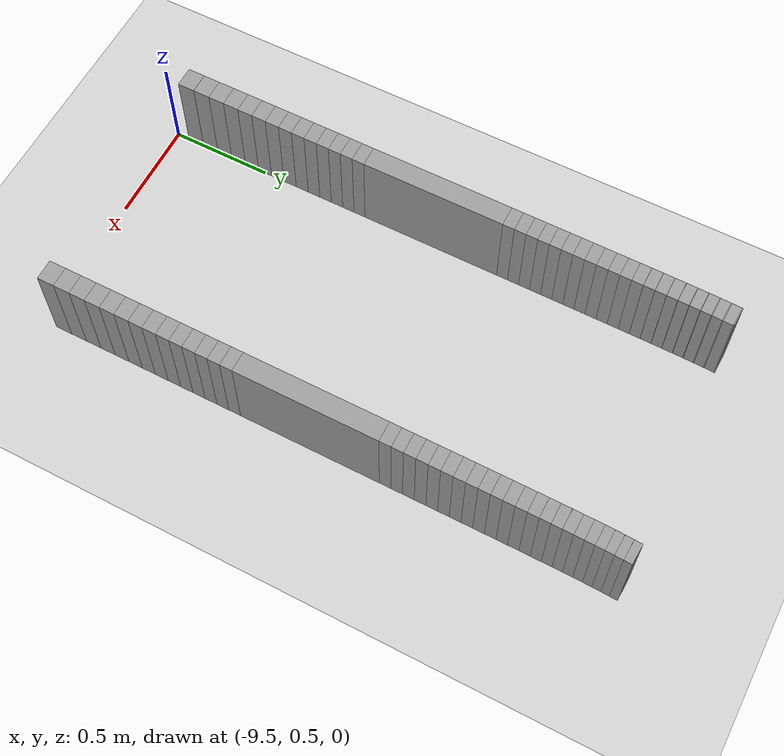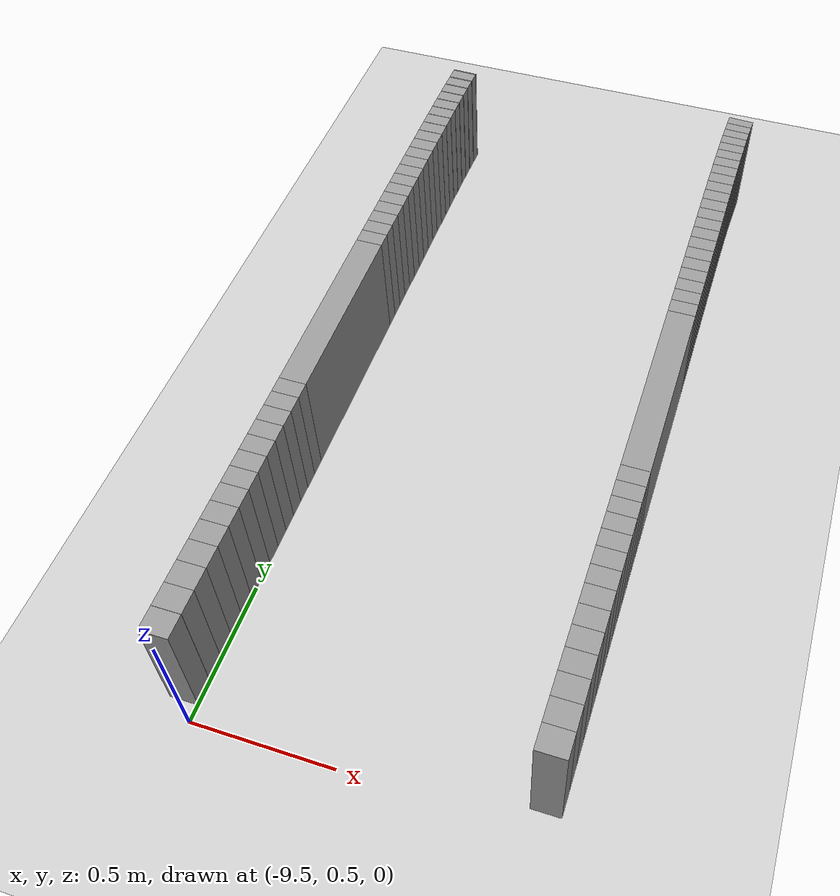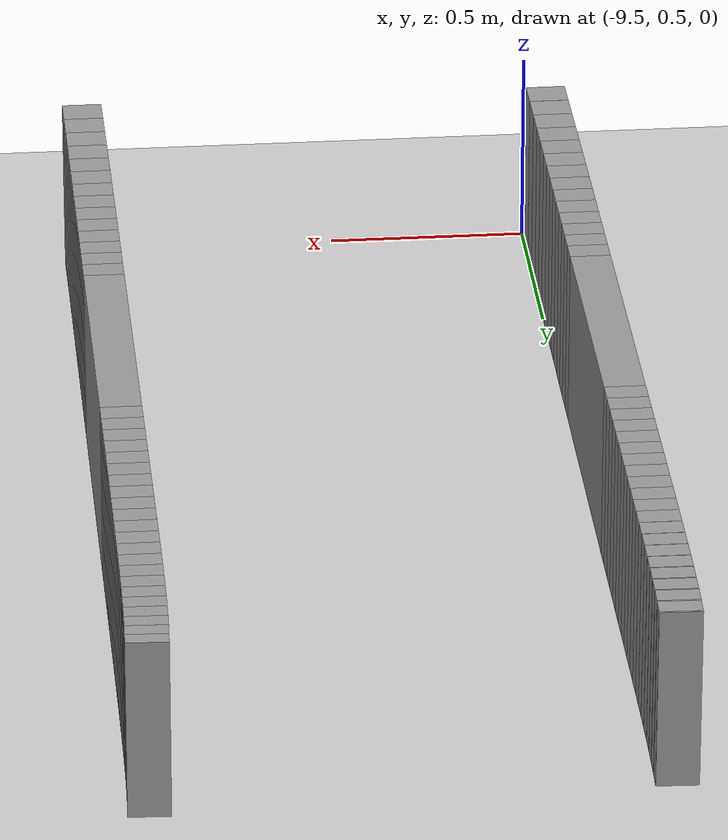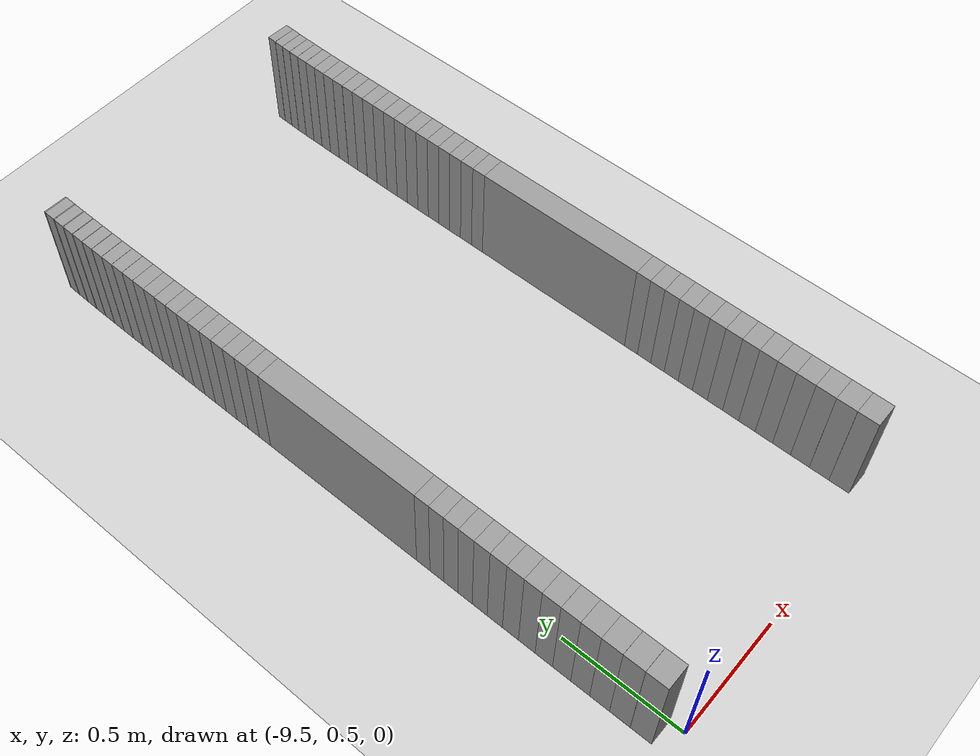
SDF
<sdf version="1.6">
 <world name="default">
  <include><uri>model://ground_plane</uri></include>
  <include><uri>model://sun</uri></include>
  <model name="wall_328_outward">
   <static>true</static>
   <link name="link">
    <collision name="collision">
     <geometry><box><size>0.03900193815023389 0.1 0.45</size></box></geometry>
    </collision>
    <visual name="visual">
     <geometry><box><size>0.03900193815023389 0.1 0.45</size></box></geometry>
     <material>
      <script><uri>file://media/materials/scripts/gazebo.material</uri><name>Gazebo/Gray</name></script>
     </material>
    </visual>
   </link>
   <pose>-8.34164228903591 3.395603054615102 0.225 0 0 -1.6208646338575372</pose>
  </model>
  <model name="wall_329_outward">
   <static>true</static>
   <link name="link">
    <collision name="collision">
     <geometry><box><size>0.04080554554341707 0.1 0.45</size></box></geometry>
    </collision>
    <visual name="visual">
     <geometry><box><size>0.04080554554341707 0.1 0.45</size></box></geometry>
     <material>
      <script><uri>file://media/materials/scripts/gazebo.material</uri><name>Gazebo/Gray</name></script>
     </material>
    </visual>
   </link>
   <pose>-8.343435999159194 3.3557401444551394 0.225 0 0 -1.6108867891562162</pose>
  </model>
  <model name="wall_330_outward">
   <static>true</static>
   <link name="link">
    <collision name="collision">
     <geometry><box><size>0.0426727022047085 0.1 0.45</size></box></geometry>
    </collision>
    <visual name="visual">
     <geometry><box><size>0.0426727022047085 0.1 0.45</size></box></geometry>
     <material>
      <script><uri>file://media/materials/scripts/gazebo.material</uri><name>Gazebo/Gray</name></script>
     </material>
    </visual>
   </link>
   <pose>-8.344926944053693 3.31402803772344 0.225 0 0 -1.6023536975850705</pose>
  </model>
  <model name="wall_331_outward">
   <static>true</static>
   <link name="link">
    <collision name="collision">
     <geometry><box><size>0.04455073825435964 0.1 0.45</size></box></geometry>
    </collision>
    <visual name="visual">
     <geometry><box><size>0.04455073825435964 0.1 0.45</size></box></geometry>
     <material>
      <script><uri>file://media/materials/scripts/gazebo.material</uri><name>Gazebo/Gray</name></script>
     </material>
    </visual>
   </link>
   <pose>-8.346144185497355 3.2704335851990924 0.225 0 0 -1.595221877170189</pose>
  </model>
  <model name="wall_332_outward">
   <static>true</static>
   <link name="link">
    <collision name="collision">
     <geometry><box><size>0.04638207900130933 0.1 0.45</size></box></geometry>
    </collision>
    <visual name="visual">
     <geometry><box><size>0.04638207900130933 0.1 0.45</size></box></geometry>
     <material>
      <script><uri>file://media/materials/scripts/gazebo.material</uri><name>Gazebo/Gray</name></script>
     </material>
    </visual>
   </link>
   <pose>-8.347119460037112 3.224977830901177 0.225 0 0 -1.5893925326592893</pose>
  </model>
  <model name="wall_333_outward">
   <static>true</static>
   <link name="link">
    <collision name="collision">
     <geometry><box><size>0.048122422771607845 0.1 0.45</size></box></geometry>
    </collision>
    <visual name="visual">
     <geometry><box><size>0.048122422771607845 0.1 0.45</size></box></geometry>
     <material>
      <script><uri>file://media/materials/scripts/gazebo.material</uri><name>Gazebo/Gray</name></script>
     </material>
    </visual>
   </link>
   <pose>-8.347885604789676 3.1777319207018397 0.225 0 0 -1.5847156209358526</pose>
  </model>
  <model name="wall_334_outward">
   <static>true</static>
   <link name="link">
    <collision name="collision">
     <geometry><box><size>0.04974132547840333 0.1 0.45</size></box></geometry>
    </collision>
    <visual name="visual">
     <geometry><box><size>0.04974132547840333 0.1 0.45</size></box></geometry>
     <material>
      <script><uri>file://media/materials/scripts/gazebo.material</uri><name>Gazebo/Gray</name></script>
     </material>
    </visual>
   </link>
   <pose>-8.34847537671109 3.1288036833707853 0.225 0 0 -1.581044228958471</pose>
  </model>
  <model name="wall_335_outward">
   <static>true</static>
   <link name="link">
    <collision name="collision">
     <geometry><box><size>0.051210320676743956 0.1 0.45</size></box></geometry>
    </collision>
    <visual name="visual">
     <geometry><box><size>0.051210320676743956 0.1 0.45</size></box></geometry>
     <material>
      <script><uri>file://media/materials/scripts/gazebo.material</uri><name>Gazebo/Gray</name></script>
     </material>
    </visual>
   </link>
   <pose>-8.348920281872683 3.078329871458111 0.225 0 0 -1.5782182388766657</pose>
  </model>
  <model name="wall_336_outward">
   <static>true</static>
   <link name="link">
    <collision name="collision">
     <geometry><box><size>0.05251020645614528 0.1 0.45</size></box></geometry>
    </collision>
    <visual name="visual">
     <geometry><box><size>0.05251020645614528 0.1 0.45</size></box></geometry>
     <material>
      <script><uri>file://media/materials/scripts/gazebo.material</uri><name>Gazebo/Gray</name></script>
     </material>
    </visual>
   </link>
   <pose>-8.349249271290173 3.026470680811281 0.225 0 0 -1.576088728838929</pose>
  </model>
  <model name="wall_337_outward">
   <static>true</static>
   <link name="link">
    <collision name="collision">
     <geometry><box><size>0.053633380548773084 0.1 0.45</size></box></geometry>
    </collision>
    <visual name="visual">
     <geometry><box><size>0.053633380548773084 0.1 0.45</size></box></geometry>
     <material>
      <script><uri>file://media/materials/scripts/gazebo.material</uri><name>Gazebo/Gray</name></script>
     </material>
    </visual>
   </link>
   <pose>-8.349487649507312 2.973399439322868 0.225 0 0 -1.5745039629943</pose>
  </model>
  <model name="wall_338_outward">
   <static>true</static>
   <link name="link">
    <collision name="collision">
     <geometry><box><size>0.05457927548963104 0.1 0.45</size></box></geometry>
    </collision>
    <visual name="visual">
     <geometry><box><size>0.05457927548963104 0.1 0.45</size></box></geometry>
     <material>
      <script><uri>file://media/materials/scripts/gazebo.material</uri><name>Gazebo/Gray</name></script>
     </material>
    </visual>
   </link>
   <pose>-8.349656913943345 2.9192933849852487 0.225 0 0 -1.5733554743037266</pose>
  </model>
  <model name="wall_339_outward">
   <static>true</static>
   <link name="link">
    <collision name="collision">
     <geometry><box><size>0.05534867469122952 0.1 0.45</size></box></geometry>
    </collision>
    <visual name="visual">
     <geometry><box><size>0.05534867469122952 0.1 0.45</size></box></geometry>
     <material>
      <script><uri>file://media/materials/scripts/gazebo.material</uri><name>Gazebo/Gray</name></script>
     </material>
    </visual>
   </link>
   <pose>-8.349774826604826 2.864329541014321 0.225 0 0 -1.5725334796249142</pose>
  </model>
  <model name="wall_340_outward">
   <static>true</static>
   <link name="link">
    <collision name="collision">
     <geometry><box><size>0.05596054931327344 0.1 0.45</size></box></geometry>
    </collision>
    <visual name="visual">
     <geometry><box><size>0.05596054931327344 0.1 0.45</size></box></geometry>
     <material>
      <script><uri>file://media/materials/scripts/gazebo.material</uri><name>Gazebo/Gray</name></script>
     </material>
    </visual>
   </link>
   <pose>-8.349855076115261 2.80867498926776 0.225 0 0 -1.5719462436081186</pose>
  </model>
  <model name="wall_341_outward">
   <static>true</static>
   <link name="link">
    <collision name="collision">
     <geometry><box><size>0.05643124145005406 0.1 0.45</size></box></geometry>
    </collision>
    <visual name="visual">
     <geometry><box><size>0.05643124145005406 0.1 0.45</size></box></geometry>
     <material>
      <script><uri>file://media/materials/scripts/gazebo.material</uri><name>Gazebo/Gray</name></script>
     </material>
    </visual>
   </link>
   <pose>-8.349908565222105 2.752479120435738 0.225 0 0 -1.57155172848894</pose>
  </model>
  <model name="wall_342_outward">
   <static>true</static>
   <link name="link">
    <collision name="collision">
     <geometry><box><size>0.05677637975800215 0.1 0.45</size></box></geometry>
    </collision>
    <visual name="visual">
     <geometry><box><size>0.05677637975800215 0.1 0.45</size></box></geometry>
     <material>
      <script><uri>file://media/materials/scripts/gazebo.material</uri><name>Gazebo/Gray</name></script>
     </material>
    </visual>
   </link>
   <pose>-8.349943584042425 2.695875321190116 0.225 0 0 -1.5712790872401878</pose>
  </model>
  <model name="wall_343_outward">
   <static>true</static>
   <link name="link">
    <collision name="collision">
     <geometry><box><size>0.05702461369565399 0.1 0.45</size></box></geometry>
    </collision>
    <visual name="visual">
     <geometry><box><size>0.05702461369565399 0.1 0.45</size></box></geometry>
     <material>
      <script><uri>file://media/materials/scripts/gazebo.material</uri><name>Gazebo/Gray</name></script>
     </material>
    </visual>
   </link>
   <pose>-8.349966021944802 2.638974829108804 0.225 0 0 -1.5711026228762555</pose>
  </model>
  <model name="wall_344_outward">
   <static>true</static>
   <link name="link">
    <collision name="collision">
     <geometry><box><size>0.05719469363204762 0.1 0.45</size></box></geometry>
    </collision>
    <visual name="visual">
     <geometry><box><size>0.05719469363204762 0.1 0.45</size></box></geometry>
     <material>
      <script><uri>file://media/materials/scripts/gazebo.material</uri><name>Gazebo/Gray</name></script>
     </material>
    </visual>
   </link>
   <pose>-8.349980208873033 2.5818651773024586 0.225 0 0 -1.5709870340160248</pose>
  </model>
  <model name="wall_345_outward">
   <static>true</static>
   <link name="link">
    <collision name="collision">
     <geometry><box><size>0.05731784803859726 0.1 0.45</size></box></geometry>
    </collision>
    <visual name="visual">
     <geometry><box><size>0.05731784803859726 0.1 0.45</size></box></geometry>
     <material>
      <script><uri>file://media/materials/scripts/gazebo.material</uri><name>Gazebo/Gray</name></script>
     </material>
    </visual>
   </link>
   <pose>-8.349988867109516 2.524608907166326 0.225 0 0 -1.570908142436645</pose>
  </model>
  <model name="wall_346_outward">
   <static>true</static>
   <link name="link">
    <collision name="collision">
     <geometry><box><size>0.05741420242407618 0.1 0.45</size></box></geometry>
    </collision>
    <visual name="visual">
     <geometry><box><size>0.05741420242407618 0.1 0.45</size></box></geometry>
     <material>
      <script><uri>file://media/materials/scripts/gazebo.material</uri><name>Gazebo/Gray</name></script>
     </material>
    </visual>
   </link>
   <pose>-8.349994000957532 2.4672428821789794 0.225 0 0 -1.570863534278756</pose>
  </model>
  <model name="wall_347_outward">
   <static>true</static>
   <link name="link">
    <collision name="collision">
     <geometry><box><size>0.05749854118146359 0.1 0.45</size></box></geometry>
    </collision>
    <visual name="visual">
     <geometry><box><size>0.05749854118146359 0.1 0.45</size></box></geometry>
     <material>
      <script><uri>file://media/materials/scripts/gazebo.material</uri><name>Gazebo/Gray</name></script>
     </material>
    </visual>
   </link>
   <pose>-8.349997068381272 2.4097865104635687 0.225 0 0 -1.5708359135975456</pose>
  </model>
  <model name="wall_348_outward">
   <static>true</static>
   <link name="link">
    <collision name="collision">
     <geometry><box><size>0.05758689703497103 0.1 0.45</size></box></geometry>
    </collision>
    <visual name="visual">
     <geometry><box><size>0.05758689703497103 0.1 0.45</size></box></geometry>
     <material>
      <script><uri>file://media/materials/scripts/gazebo.material</uri><name>Gazebo/Gray</name></script>
     </material>
    </visual>
   </link>
   <pose>-8.349998864271328 2.352243791385392 0.225 0 0 -1.5708191722124614</pose>
  </model>
  <model name="wall_349_outward">
   <static>true</static>
   <link name="link">
    <collision name="collision">
     <geometry><box><size>0.05768962466834711 0.1 0.45</size></box></geometry>
    </collision>
    <visual name="visual">
     <geometry><box><size>0.05768962466834711 0.1 0.45</size></box></geometry>
     <material>
      <script><uri>file://media/materials/scripts/gazebo.material</uri><name>Gazebo/Gray</name></script>
     </material>
    </visual>
   </link>
   <pose>-8.34999976103484 2.2946055305422366 0.225 0 0 -1.5708046113056782</pose>
  </model>
  <model name="wall_350_outward">
   <static>true</static>
   <link name="link">
    <collision name="collision">
     <geometry><box><size>0.7076340183245748 0.1 0.45</size></box></geometry>
    </collision>
    <visual name="visual">
     <geometry><box><size>0.7076340183245748 0.1 0.45</size></box></geometry>
     <material>
      <script><uri>file://media/materials/scripts/gazebo.material</uri><name>Gazebo/Gray</name></script>
     </material>
    </visual>
   </link>
   <pose>-8.35 1.9119437090467655 0.225 0 0 -1.5707963267948966</pose>
  </model>
  <model name="wall_351_outward">
   <static>true</static>
   <link name="link">
    <collision name="collision">
     <geometry><box><size>0.06126310045538319 0.1 0.45</size></box></geometry>
    </collision>
    <visual name="visual">
     <geometry><box><size>0.06126310045538319 0.1 0.45</size></box></geometry>
     <material>
      <script><uri>file://media/materials/scripts/gazebo.material</uri><name>Gazebo/Gray</name></script>
     </material>
    </visual>
   </link>
   <pose>-8.349999761031274 1.5274951496577187 0.225 0 0 -1.5707885254030662</pose>
  </model>
  <model name="wall_352_outward">
   <static>true</static>
   <link name="link">
    <collision name="collision">
     <geometry><box><size>0.06201979915714174 0.1 0.45</size></box></geometry>
    </collision>
    <visual name="visual">
     <geometry><box><size>0.06201979915714174 0.1 0.45</size></box></geometry>
     <material>
      <script><uri>file://media/materials/scripts/gazebo.material</uri><name>Gazebo/Gray</name></script>
     </material>
    </visual>
   </link>
   <pose>-8.349998864247157 1.4658536998593654 0.225 0 0 -1.570775113717767</pose>
  </model>
  <model name="wall_353_outward">
   <static>true</static>
   <link name="link">
    <collision name="collision">
     <geometry><box><size>0.06295423203527287 0.1 0.45</size></box></geometry>
    </collision>
    <visual name="visual">
     <geometry><box><size>0.06295423203527287 0.1 0.45</size></box></geometry>
     <material>
      <script><uri>file://media/materials/scripts/gazebo.material</uri><name>Gazebo/Gray</name></script>
     </material>
    </visual>
   </link>
   <pose>-8.349997068288186 1.4033666842907118 0.225 0 0 -1.5707601689849184</pose>
  </model>
  <model name="wall_354_outward">
   <static>true</static>
   <link name="link">
    <collision name="collision">
     <geometry><box><size>0.0640826005896032 0.1 0.45</size></box></geometry>
    </collision>
    <visual name="visual">
     <geometry><box><size>0.0640826005896032 0.1 0.45</size></box></geometry>
     <material>
      <script><uri>file://media/materials/scripts/gazebo.material</uri><name>Gazebo/Gray</name></script>
     </material>
    </visual>
   </link>
   <pose>-8.349994000708765 1.3398482680569426 0.225 0 0 -1.5707361096431074</pose>
  </model>
  <model name="wall_355_outward">
   <static>true</static>
   <link name="link">
    <collision name="collision">
     <geometry><box><size>0.06542368274400044 0.1 0.45</size></box></geometry>
    </collision>
    <visual name="visual">
     <geometry><box><size>0.06542368274400044 0.1 0.45</size></box></geometry>
     <material>
      <script><uri>file://media/materials/scripts/gazebo.material</uri><name>Gazebo/Gray</name></script>
     </material>
    </visual>
   </link>
   <pose>-8.34998862739824 1.2750951266295174 0.225 0 0 -1.570691047649968</pose>
  </model>
  <model name="wall_356_outward">
   <static>true</static>
   <link name="link">
    <collision name="collision">
     <geometry><box><size>0.06697965591710811 0.1 0.45</size></box></geometry>
    </collision>
    <visual name="visual">
     <geometry><box><size>0.06697965591710811 0.1 0.45</size></box></geometry>
     <material>
      <script><uri>file://media/materials/scripts/gazebo.material</uri><name>Gazebo/Gray</name></script>
     </material>
    </visual>
   </link>
   <pose>-8.349979548475408 1.208893457954328 0.225 0 0 -1.570628065310169</pose>
  </model>
  <model name="wall_357_outward">
   <static>true</static>
   <link name="link">
    <collision name="collision">
     <geometry><box><size>0.06874311528114416 0.1 0.45</size></box></geometry>
    </collision>
    <visual name="visual">
     <geometry><box><size>0.06874311528114416 0.1 0.45</size></box></geometry>
     <material>
      <script><uri>file://media/materials/scripts/gazebo.material</uri><name>Gazebo/Gray</name></script>
     </material>
    </visual>
   </link>
   <pose>-8.3499646374871 1.1410320740809436 0.225 0 0 -1.5705264542342878</pose>
  </model>
  <model name="wall_358_outward">
   <static>true</static>
   <link name="link">
    <collision name="collision">
     <geometry><box><size>0.07069627779508408 0.1 0.45</size></box></geometry>
    </collision>
    <visual name="visual">
     <geometry><box><size>0.07069627779508408 0.1 0.45</size></box></geometry>
     <material>
      <script><uri>file://media/materials/scripts/gazebo.material</uri><name>Gazebo/Gray</name></script>
     </material>
    </visual>
   </link>
   <pose>-8.349940498125964 1.0713123819194257 0.225 0 0 -1.5703758401193186</pose>
  </model>
  <model name="wall_359_outward">
   <static>true</static>
   <link name="link">
    <collision name="collision">
     <geometry><box><size>0.07280359393281266 0.1 0.45</size></box></geometry>
    </collision>
    <visual name="visual">
     <geometry><box><size>0.07280359393281266 0.1 0.45</size></box></geometry>
     <material>
      <script><uri>file://media/materials/scripts/gazebo.material</uri><name>Gazebo/Gray</name></script>
     </material>
    </visual>
   </link>
   <pose>-8.34990260886633 0.999562456462873 0.225 0 0 -1.5701637799946244</pose>
  </model>
  <model name="wall_360_outward">
   <static>true</static>
   <link name="link">
    <collision name="collision">
     <geometry><box><size>0.07501599752533276 0.1 0.45</size></box></geometry>
    </collision>
    <visual name="visual">
     <geometry><box><size>0.07501599752533276 0.1 0.45</size></box></geometry>
     <material>
      <script><uri>file://media/materials/scripts/gazebo.material</uri><name>Gazebo/Gray</name></script>
     </material>
    </visual>
   </link>
   <pose>-8.349844600317287 0.925652684329985 0.225 0 0 -1.5698636533223431</pose>
  </model>
  <model name="wall_361_outward">
   <static>true</static>
   <link name="link">
    <collision name="collision">
     <geometry><box><size>0.07727941932852968 0.1 0.45</size></box></geometry>
    </collision>
    <visual name="visual">
     <geometry><box><size>0.07727941932852968 0.1 0.45</size></box></geometry>
     <material>
      <script><uri>file://media/materials/scripts/gazebo.material</uri><name>Gazebo/Gray</name></script>
     </material>
    </visual>
   </link>
   <pose>-8.349757250703618 0.849505027702213 0.225 0 0 -1.5694410650765402</pose>
  </model>
  <model name="wall_362_outward">
   <static>true</static>
   <link name="link">
    <collision name="collision">
     <geometry><box><size>0.07952635877338442 0.1 0.45</size></box></geometry>
    </collision>
    <visual name="visual">
     <geometry><box><size>0.07952635877338442 0.1 0.45</size></box></geometry>
     <material>
      <script><uri>file://media/materials/scripts/gazebo.material</uri><name>Gazebo/Gray</name></script>
     </material>
    </visual>
   </link>
   <pose>-8.349628275494913 0.7711022479340834 0.225 0 0 -1.5688697114186894</pose>
  </model>
  <model name="wall_363_outward">
   <static>true</static>
   <link name="link">
    <collision name="collision">
     <geometry><box><size>0.08168485734918582 0.1 0.45</size></box></geometry>
    </collision>
    <visual name="visual">
     <geometry><box><size>0.08168485734918582 0.1 0.45</size></box></geometry>
     <material>
      <script><uri>file://media/materials/scripts/gazebo.material</uri><name>Gazebo/Gray</name></script>
     </material>
    </visual>
   </link>
   <pose>-8.34944148214878 0.6904968622995167 0.225 0 0 -1.5680985152801161</pose>
  </model>
  <model name="wall_364_outward">
   <static>true</static>
   <link name="link">
    <collision name="collision">
     <geometry><box><size>0.08368759094716821 0.1 0.45</size></box></geometry>
    </collision>
    <visual name="visual">
     <geometry><box><size>0.08368759094716821 0.1 0.45</size></box></geometry>
     <material>
      <script><uri>file://media/materials/scripts/gazebo.material</uri><name>Gazebo/Gray</name></script>
     </material>
    </visual>
   </link>
   <pose>-8.349175818291302 0.607811075637659 0.225 0 0 -1.5670806224048774</pose>
  </model>
  <model name="wall_376_inward">
   <static>true</static>
   <link name="link">
    <collision name="collision">
     <geometry><box><size>0.005119839409588191 0.1 0.45</size></box></geometry>
    </collision>
    <visual name="visual">
     <geometry><box><size>0.005119839409588191 0.1 0.45</size></box></geometry>
     <material>
      <script><uri>file://media/materials/scripts/gazebo.material</uri><name>Gazebo/Gray</name></script>
     </material>
    </visual>
   </link>
   <pose>-9.543483807257811 3.3783332711529703 0.225 0 0 -1.6066202433707488</pose>
  </model>
  <model name="wall_377_inward">
   <static>true</static>
   <link name="link">
    <collision name="collision">
     <geometry><box><size>0.04737220040243826 0.1 0.45</size></box></geometry>
    </collision>
    <visual name="visual">
     <geometry><box><size>0.04737220040243826 0.1 0.45</size></box></geometry>
     <material>
      <script><uri>file://media/materials/scripts/gazebo.material</uri><name>Gazebo/Gray</name></script>
     </material>
    </visual>
   </link>
   <pose>-9.544322840982838 3.3521006868433436 0.225 0 0 -1.6023536975850448</pose>
  </model>
  <model name="wall_378_inward">
   <static>true</static>
   <link name="link">
    <collision name="collision">
     <geometry><box><size>0.004279083180300102 0.1 0.45</size></box></geometry>
    </collision>
    <visual name="visual">
     <geometry><box><size>0.004279083180300102 0.1 0.45</size></box></geometry>
     <material>
      <script><uri>file://media/materials/scripts/gazebo.material</uri><name>Gazebo/Gray</name></script>
     </material>
    </visual>
   </link>
   <pose>-9.545130069045616 3.3262876763177944 0.225 0 0 -1.5987877873777223</pose>
  </model>
  <model name="wall_379_inward">
   <static>true</static>
   <link name="link">
    <collision name="collision">
     <geometry><box><size>0.04843910175293937 0.1 0.45</size></box></geometry>
    </collision>
    <visual name="visual">
     <geometry><box><size>0.04843910175293937 0.1 0.45</size></box></geometry>
     <material>
      <script><uri>file://media/materials/scripts/gazebo.material</uri><name>Gazebo/Gray</name></script>
     </material>
    </visual>
   </link>
   <pose>-9.545781467157951 3.2999366464090523 0.225 0 0 -1.5952218771701872</pose>
  </model>
  <model name="wall_380_inward">
   <static>true</static>
   <link name="link">
    <collision name="collision">
     <geometry><box><size>0.00349760175431171 0.1 0.45</size></box></geometry>
    </collision>
    <visual name="visual">
     <geometry><box><size>0.00349760175431171 0.1 0.45</size></box></geometry>
     <material>
      <script><uri>file://media/materials/scripts/gazebo.material</uri><name>Gazebo/Gray</name></script>
     </material>
    </visual>
   </link>
   <pose>-9.546410599538092 3.2739759236643358 0.225 0 0 -1.5923072049148057</pose>
  </model>
  <model name="wall_381_inward">
   <static>true</static>
   <link name="link">
    <collision name="collision">
     <geometry><box><size>0.04953396338105793 0.1 0.45</size></box></geometry>
    </collision>
    <visual name="visual">
     <geometry><box><size>0.04953396338105793 0.1 0.45</size></box></geometry>
     <material>
      <script><uri>file://media/materials/scripts/gazebo.material</uri><name>Gazebo/Gray</name></script>
     </material>
    </visual>
   </link>
   <pose>-9.546908760224454 3.247464828003196 0.225 0 0 -1.5893925326593192</pose>
  </model>
  <model name="wall_382_inward">
   <static>true</static>
   <link name="link">
    <collision name="collision">
     <geometry><box><size>0.0028061444765664057 0.1 0.45</size></box></geometry>
    </collision>
    <visual name="visual">
     <geometry><box><size>0.0028061444765664057 0.1 0.45</size></box></geometry>
     <material>
      <script><uri>file://media/materials/scripts/gazebo.material</uri><name>Gazebo/Gray</name></script>
     </material>
    </visual>
   </link>
   <pose>-9.547392115362156 3.221299241817854 0.225 0 0 -1.587054076797149</pose>
  </model>
  <model name="wall_383_inward">
   <static>true</static>
   <link name="link">
    <collision name="collision">
     <geometry><box><size>0.0506269176770415 0.1 0.45</size></box></geometry>
    </collision>
    <visual name="visual">
     <geometry><box><size>0.0506269176770415 0.1 0.45</size></box></geometry>
     <material>
      <script><uri>file://media/materials/scripts/gazebo.material</uri><name>Gazebo/Gray</name></script>
     </material>
    </visual>
   </link>
   <pose>-9.54776725925676 3.19458534832368 0.225 0 0 -1.5847156209358577</pose>
  </model>
  <model name="wall_384_inward">
   <static>true</static>
   <link name="link">
    <collision name="collision">
     <geometry><box><size>0.0022028339492618475 0.1 0.45</size></box></geometry>
    </collision>
    <visual name="visual">
     <geometry><box><size>0.0022028339492618475 0.1 0.45</size></box></geometry>
     <material>
      <script><uri>file://media/materials/scripts/gazebo.material</uri><name>Gazebo/Gray</name></script>
     </material>
    </visual>
   </link>
   <pose>-9.548132902114776 3.168173005080929 0.225 0 0 -1.5828799249475156</pose>
  </model>
  <model name="wall_385_inward">
   <static>true</static>
   <link name="link">
    <collision name="collision">
     <geometry><box><size>0.05169054189697134 0.1 0.45</size></box></geometry>
    </collision>
    <visual name="visual">
     <geometry><box><size>0.05169054189697134 0.1 0.45</size></box></geometry>
     <material>
      <script><uri>file://media/materials/scripts/gazebo.material</uri><name>Gazebo/Gray</name></script>
     </material>
    </visual>
   </link>
   <pose>-9.548411066043201 3.1412277546844445 0.225 0 0 -1.5810442289584576</pose>
  </model>
  <model name="wall_386_inward">
   <static>true</static>
   <link name="link">
    <collision name="collision">
     <geometry><box><size>0.0016955934848551521 0.1 0.45</size></box></geometry>
    </collision>
    <visual name="visual">
     <geometry><box><size>0.0016955934848551521 0.1 0.45</size></box></geometry>
     <material>
      <script><uri>file://media/materials/scripts/gazebo.material</uri><name>Gazebo/Gray</name></script>
     </material>
    </visual>
   </link>
   <pose>-9.548683411323426 3.114536077197774 0.225 0 0 -1.5796312339169223</pose>
  </model>
  <model name="wall_387_inward">
   <static>true</static>
   <link name="link">
    <collision name="collision">
     <geometry><box><size>0.052696971519165976 0.1 0.45</size></box></geometry>
    </collision>
    <visual name="visual">
     <geometry><box><size>0.052696971519165976 0.1 0.45</size></box></geometry>
     <material>
      <script><uri>file://media/materials/scripts/gazebo.material</uri><name>Gazebo/Gray</name></script>
     </material>
    </visual>
   </link>
   <pose>-9.5488864557809 3.087340553480109 0.225 0 0 -1.5782182388766588</pose>
  </model>
  <model name="wall_388_inward">
   <static>true</static>
   <link name="link">
    <collision name="collision">
     <geometry><box><size>0.0012777057812211883 0.1 0.45</size></box></geometry>
    </collision>
    <visual name="visual">
     <geometry><box><size>0.0012777057812211883 0.1 0.45</size></box></geometry>
     <material>
      <script><uri>file://media/materials/scripts/gazebo.material</uri><name>Gazebo/Gray</name></script>
     </material>
    </visual>
   </link>
   <pose>-9.549086071391152 3.0603539534359205 0.225 0 0 -1.5771534838586723</pose>
  </model>
  <model name="wall_389_inward">
   <static>true</static>
   <link name="link">
    <collision name="collision">
     <geometry><box><size>0.05362448956074912 0.1 0.45</size></box></geometry>
    </collision>
    <visual name="visual">
     <geometry><box><size>0.05362448956074912 0.1 0.45</size></box></geometry>
     <material>
      <script><uri>file://media/materials/scripts/gazebo.material</uri><name>Gazebo/Gray</name></script>
     </material>
    </visual>
   </link>
   <pose>-9.549232033168613 3.032903244172184 0.225 0 0 -1.5760887288389183</pose>
  </model>
  <model name="wall_390_inward">
   <static>true</static>
   <link name="link">
    <collision name="collision">
     <geometry><box><size>0.0009508594072489894 0.1 0.45</size></box></geometry>
    </collision>
    <visual name="visual">
     <geometry><box><size>0.0009508594072489894 0.1 0.45</size></box></geometry>
     <material>
      <script><uri>file://media/materials/scripts/gazebo.material</uri><name>Gazebo/Gray</name></script>
     </material>
    </visual>
   </link>
   <pose>-9.5493760731208 3.005615950000112 0.225 0 0 -1.5752963459158074</pose>
  </model>
  <model name="wall_391_inward">
   <static>true</static>
   <link name="link">
    <collision name="collision">
     <geometry><box><size>0.05445335704712714 0.1 0.45</size></box></geometry>
    </collision>
    <visual name="visual">
     <geometry><box><size>0.05445335704712714 0.1 0.45</size></box></geometry>
     <material>
      <script><uri>file://media/materials/scripts/gazebo.material</uri><name>Gazebo/Gray</name></script>
     </material>
    </visual>
   </link>
   <pose>-9.549479158943942 2.9779140337231373 0.225 0 0 -1.5745039629943316</pose>
  </model>
  <model name="wall_392_inward">
   <static>true</static>
   <link name="link">
    <collision name="collision">
     <geometry><box><size>0.0006890931765067294 0.1 0.45</size></box></geometry>
    </collision>
    <visual name="visual">
     <geometry><box><size>0.0006890931765067294 0.1 0.45</size></box></geometry>
     <material>
      <script><uri>file://media/materials/scripts/gazebo.material</uri><name>Gazebo/Gray</name></script>
     </material>
    </visual>
   </link>
   <pose>-9.549581184929256 2.9503429974391784 0.225 0 0 -1.5739297186488879</pose>
  </model>
  <model name="wall_393_inward">
   <static>true</static>
   <link name="link">
    <collision name="collision">
     <geometry><box><size>0.055663617305724736 0.1 0.45</size></box></geometry>
    </collision>
    <visual name="visual">
     <geometry><box><size>0.055663617305724736 0.1 0.45</size></box></geometry>
     <material>
      <script><uri>file://media/materials/scripts/gazebo.material</uri><name>Gazebo/Gray</name></script>
     </material>
    </visual>
   </link>
   <pose>-9.549653388802046 2.9221667347687683 0.225 0 0 -1.5733518327408105</pose>
  </model>
  <model name="wall_394_inward">
   <static>true</static>
   <link name="link">
    <collision name="collision">
     <geometry><box><size>0.05612378550544153 0.1 0.45</size></box></geometry>
    </collision>
    <visual name="visual">
     <geometry><box><size>0.05612378550544153 0.1 0.45</size></box></geometry>
     <material>
      <script><uri>file://media/materials/scripts/gazebo.material</uri><name>Gazebo/Gray</name></script>
     </material>
    </visual>
   </link>
   <pose>-9.54977320912218 2.8662731664938548 0.225 0 0 -1.572531636309485</pose>
  </model>
  <model name="wall_395_inward">
   <static>true</static>
   <link name="link">
    <collision name="collision">
     <geometry><box><size>0.05649178373023679 0.1 0.45</size></box></geometry>
    </collision>
    <visual name="visual">
     <geometry><box><size>0.05649178373023679 0.1 0.45</size></box></geometry>
     <material>
      <script><uri>file://media/materials/scripts/gazebo.material</uri><name>Gazebo/Gray</name></script>
     </material>
    </visual>
   </link>
   <pose>-9.549854362239723 2.8099654427754364 0.225 0 0 -1.5719454170692897</pose>
  </model>
  <model name="wall_396_inward">
   <static>true</static>
   <link name="link">
    <collision name="collision">
     <geometry><box><size>0.05679497310371071 0.1 0.45</size></box></geometry>
    </collision>
    <visual name="visual">
     <geometry><box><size>0.05679497310371071 0.1 0.45</size></box></geometry>
     <material>
      <script><uri>file://media/materials/scripts/gazebo.material</uri><name>Gazebo/Gray</name></script>
     </material>
    </visual>
   </link>
   <pose>-9.549908259669635 2.75332209110035 0.225 0 0 -1.5715513358489768</pose>
  </model>
  <model name="wall_397_inward">
   <static>true</static>
   <link name="link">
    <collision name="collision">
     <geometry><box><size>0.05701699007119054 0.1 0.45</size></box></geometry>
    </collision>
    <visual name="visual">
     <geometry><box><size>0.05701699007119054 0.1 0.45</size></box></geometry>
     <material>
      <script><uri>file://media/materials/scripts/gazebo.material</uri><name>Gazebo/Gray</name></script>
     </material>
    </visual>
   </link>
   <pose>-9.549943458129334 2.6964161209265387 0.225 0 0 -1.571278923396057</pose>
  </model>
  <model name="wall_398_inward">
   <static>true</static>
   <link name="link">
    <collision name="collision">
     <geometry><box><size>0.0571815829686449 0.1 0.45</size></box></geometry>
    </collision>
    <visual name="visual">
     <geometry><box><size>0.0571815829686449 0.1 0.45</size></box></geometry>
     <material>
      <script><uri>file://media/materials/scripts/gazebo.material</uri><name>Gazebo/Gray</name></script>
     </material>
    </visual>
   </link>
   <pose>-9.549965971474748 2.6393168390669692 0.225 0 0 -1.5711025527796165</pose>
  </model>
  <model name="wall_399_inward">
   <static>true</static>
   <link name="link">
    <collision name="collision">
     <geometry><box><size>0.05730037270150235 0.1 0.45</size></box></geometry>
    </collision>
    <visual name="visual">
     <geometry><box><size>0.05730037270150235 0.1 0.45</size></box></geometry>
     <material>
      <script><uri>file://media/materials/scripts/gazebo.material</uri><name>Gazebo/Gray</name></script>
     </material>
    </visual>
   </link>
   <pose>-9.549980189581696 2.5820758630932517 0.225 0 0 -1.5709870014304697</pose>
  </model>
  <model name="wall_400_inward">
   <static>true</static>
   <link name="link">
    <collision name="collision">
     <geometry><box><size>0.05738166285859267 0.1 0.45</size></box></geometry>
    </collision>
    <visual name="visual">
     <geometry><box><size>0.05738166285859267 0.1 0.45</size></box></geometry>
     <material>
      <script><uri>file://media/materials/scripts/gazebo.material</uri><name>Gazebo/Gray</name></script>
     </material>
    </visual>
   </link>
   <pose>-9.549988860230744 2.5247348460133425 0.225 0 0 -1.5709081320332596</pose>
  </model>
  <model name="wall_401_inward">
   <static>true</static>
   <link name="link">
    <collision name="collision">
     <geometry><box><size>0.057452443476533645 0.1 0.45</size></box></geometry>
    </collision>
    <visual name="visual">
     <geometry><box><size>0.057452443476533645 0.1 0.45</size></box></geometry>
     <material>
      <script><uri>file://media/materials/scripts/gazebo.material</uri><name>Gazebo/Gray</name></script>
     </material>
    </visual>
   </link>
   <pose>-9.54999399851863 2.4673177930899715 0.225 0 0 -1.570863530295088</pose>
  </model>
  <model name="wall_402_inward">
   <static>true</static>
   <link name="link">
    <collision name="collision">
     <geometry><box><size>0.05752189466045364 0.1 0.45</size></box></geometry>
    </collision>
    <visual name="visual">
     <geometry><box><size>0.05752189466045364 0.1 0.45</size></box></geometry>
     <material>
      <script><uri>file://media/materials/scripts/gazebo.material</uri><name>Gazebo/Gray</name></script>
     </material>
    </visual>
   </link>
   <pose>-9.549997067533182 2.4098306241088805 0.225 0 0 -1.570835912135825</pose>
  </model>
  <model name="wall_403_inward">
   <static>true</static>
   <link name="link">
    <collision name="collision">
     <geometry><box><size>0.05760502423340772 0.1 0.45</size></box></geometry>
    </collision>
    <visual name="visual">
     <geometry><box><size>0.05760502423340772 0.1 0.45</size></box></geometry>
     <material>
      <script><uri>file://media/materials/scripts/gazebo.material</uri><name>Gazebo/Gray</name></script>
     </material>
    </visual>
   </link>
   <pose>-9.5499988640187 2.352267164691999 0.225 0 0 -1.5708191711082633</pose>
  </model>
  <model name="wall_404_inward">
   <static>true</static>
   <link name="link">
    <collision name="collision">
     <geometry><box><size>0.05770144900034044 0.1 0.45</size></box></geometry>
    </collision>
    <visual name="visual">
     <geometry><box><size>0.05770144900034044 0.1 0.45</size></box></geometry>
     <material>
      <script><uri>file://media/materials/scripts/gazebo.material</uri><name>Gazebo/Gray</name></script>
     </material>
    </visual>
   </link>
   <pose>-9.549999760996155 2.2946139280836304 0.225 0 0 -1.5708046109488487</pose>
  </model>
  <model name="wall_405_inward">
   <static>true</static>
   <link name="link">
    <collision name="collision">
     <geometry><box><size>0.7076435250960138 0.1 0.45</size></box></geometry>
    </collision>
    <visual name="visual">
     <geometry><box><size>0.7076435250960138 0.1 0.45</size></box></geometry>
     <material>
      <script><uri>file://media/materials/scripts/gazebo.material</uri><name>Gazebo/Gray</name></script>
     </material>
    </visual>
   </link>
   <pose>-9.54999999999087 1.9119414410364435 0.225 0 0 -1.5707963267690963</pose>
  </model>
  <model name="wall_406_inward">
   <static>true</static>
   <link name="link">
    <collision name="collision">
     <geometry><box><size>0.06127751120775546 0.1 0.45</size></box></geometry>
    </collision>
    <visual name="visual">
     <geometry><box><size>0.06127751120775546 0.1 0.45</size></box></geometry>
     <material>
      <script><uri>file://media/materials/scripts/gazebo.material</uri><name>Gazebo/Gray</name></script>
     </material>
    </visual>
   </link>
   <pose>-9.549999760929822 1.5274809228854913 0.225 0 0 -1.570788524522448</pose>
  </model>
  <model name="wall_407_inward">
   <static>true</static>
   <link name="link">
    <collision name="collision">
     <geometry><box><size>0.06203727292923725 0.1 0.45</size></box></geometry>
    </collision>
    <visual name="visual">
     <geometry><box><size>0.06203727292923725 0.1 0.45</size></box></geometry>
     <material>
      <script><uri>file://media/materials/scripts/gazebo.material</uri><name>Gazebo/Gray</name></script>
     </material>
    </visual>
   </link>
   <pose>-9.549998863843674 1.4658235308249075 0.225 0 0 -1.5707751126377052</pose>
  </model>
  <model name="wall_408_inward">
   <static>true</static>
   <link name="link">
    <collision name="collision">
     <geometry><box><size>0.06298036887088518 0.1 0.45</size></box></geometry>
    </collision>
    <visual name="visual">
     <geometry><box><size>0.06298036887088518 0.1 0.45</size></box></geometry>
     <material>
      <script><uri>file://media/materials/scripts/gazebo.material</uri><name>Gazebo/Gray</name></script>
     </material>
    </visual>
   </link>
   <pose>-9.549997067106512 1.4033147099524141 0.225 0 0 -1.570760166227612</pose>
  </model>
  <model name="wall_409_inward">
   <static>true</static>
   <link name="link">
    <collision name="collision">
     <geometry><box><size>0.06413037422861936 0.1 0.45</size></box></geometry>
    </collision>
    <visual name="visual">
     <geometry><box><size>0.06413037422861936 0.1 0.45</size></box></geometry>
     <material>
      <script><uri>file://media/materials/scripts/gazebo.material</uri><name>Gazebo/Gray</name></script>
     </material>
    </visual>
   </link>
   <pose>-9.549993997224753 1.3397593384814042 0.225 0 0 -1.5707361001441047</pose>
  </model>
  <model name="wall_410_inward">
   <static>true</static>
   <link name="link">
    <collision name="collision">
     <geometry><box><size>0.06549388543377174 0.1 0.45</size></box></geometry>
    </collision>
    <visual name="visual">
     <geometry><box><size>0.06549388543377174 0.1 0.45</size></box></geometry>
     <material>
      <script><uri>file://media/materials/scripts/gazebo.material</uri><name>Gazebo/Gray</name></script>
     </material>
    </visual>
   </link>
   <pose>-9.54998861788079 1.274947208889904 0.225 0 0 -1.5706910294798315</pose>
  </model>
  <model name="wall_411_inward">
   <static>true</static>
   <link name="link">
    <collision name="collision">
     <geometry><box><size>0.06709000057364398 0.1 0.45</size></box></geometry>
    </collision>
    <visual name="visual">
     <geometry><box><size>0.06709000057364398 0.1 0.45</size></box></geometry>
     <material>
      <script><uri>file://media/materials/scripts/gazebo.material</uri><name>Gazebo/Gray</name></script>
     </material>
    </visual>
   </link>
   <pose>-9.549979523835402 1.20865526654286 0.225 0 0 -1.5706280191416835</pose>
  </model>
  <model name="wall_412_inward">
   <static>true</static>
   <link name="link">
    <collision name="collision">
     <geometry><box><size>0.06890915132268022 0.1 0.45</size></box></geometry>
    </collision>
    <visual name="visual">
     <geometry><box><size>0.06890915132268022 0.1 0.45</size></box></geometry>
     <material>
      <script><uri>file://media/materials/scripts/gazebo.material</uri><name>Gazebo/Gray</name></script>
     </material>
    </visual>
   </link>
   <pose>-9.549964576208017 1.1406556923254227 0.225 0 0 -1.5705263554755424</pose>
  </model>
  <model name="wall_413_inward">
   <static>true</static>
   <link name="link">
    <collision name="collision">
     <geometry><box><size>0.07093231612693489 0.1 0.45</size></box></geometry>
    </collision>
    <visual name="visual">
     <geometry><box><size>0.07093231612693489 0.1 0.45</size></box></geometry>
     <material>
      <script><uri>file://media/materials/scripts/gazebo.material</uri><name>Gazebo/Gray</name></script>
     </material>
    </visual>
   </link>
   <pose>-9.549940354668996 1.0707349629944234 0.225 0 0 -1.5703756499260104</pose>
  </model>
  <model name="wall_414_inward">
   <static>true</static>
   <link name="link">
    <collision name="collision">
     <geometry><box><size>0.07313732598416572 0.1 0.45</size></box></geometry>
    </collision>
    <visual name="visual">
     <geometry><box><size>0.07313732598416572 0.1 0.45</size></box></geometry>
     <material>
      <script><uri>file://media/materials/scripts/gazebo.material</uri><name>Gazebo/Gray</name></script>
     </material>
    </visual>
   </link>
   <pose>-9.549902289976487 0.9987001524014713 0.225 0 0 -1.570163410514283</pose>
  </model>
  <model name="wall_415_inward">
   <static>true</static>
   <link name="link">
    <collision name="collision">
     <geometry><box><size>0.07548636494005284 0.1 0.45</size></box></geometry>
    </collision>
    <visual name="visual">
     <geometry><box><size>0.07548636494005284 0.1 0.45</size></box></geometry>
     <material>
      <script><uri>file://media/materials/scripts/gazebo.material</uri><name>Gazebo/Gray</name></script>
     </material>
    </visual>
   </link>
   <pose>-9.549843916228799 0.9243883307047625 0.225 0 0 -1.569862943601513</pose>
  </model>
  <model name="wall_416_inward">
   <static>true</static>
   <link name="link">
    <collision name="collision">
     <geometry><box><size>0.07792041408197473 0.1 0.45</size></box></geometry>
    </collision>
    <visual name="visual">
     <geometry><box><size>0.07792041408197473 0.1 0.45</size></box></geometry>
     <material>
      <script><uri>file://media/materials/scripts/gazebo.material</uri><name>Gazebo/Gray</name></script>
     </material>
    </visual>
   </link>
   <pose>-9.549755837154049 0.8476849934809196 0.225 0 0 -1.5694398082364798</pose>
  </model>
  <model name="wall_417_inward">
   <static>true</static>
   <link name="link">
    <collision name="collision">
     <geometry><box><size>0.0803918413652768 0.1 0.45</size></box></geometry>
    </collision>
    <visual name="visual">
     <geometry><box><size>0.0803918413652768 0.1 0.45</size></box></geometry>
     <material>
      <script><uri>file://media/materials/scripts/gazebo.material</uri><name>Gazebo/Gray</name></script>
     </material>
    </visual>
   </link>
   <pose>-9.549625455684074 0.7685289763759587 0.225 0 0 -1.568867492001466</pose>
  </model>
  <model name="wall_418_inward">
   <static>true</static>
   <link name="link">
    <collision name="collision">
     <geometry><box><size>0.08222158409132727 0.1 0.45</size></box></geometry>
    </collision>
    <visual name="visual">
     <geometry><box><size>0.08222158409132727 0.1 0.45</size></box></geometry>
     <material>
      <script><uri>file://media/materials/scripts/gazebo.material</uri><name>Gazebo/Gray</name></script>
     </material>
    </visual>
   </link>
   <pose>-9.549437015408156 0.6872224880260835 0.225 0 0 -1.5680985152801132</pose>
  </model>
  <model name="wall_419_inward">
   <static>true</static>
   <link name="link">
    <collision name="collision">
     <geometry><box><size>0.0006107356987710367 0.1 0.45</size></box></geometry>
    </collision>
    <visual name="visual">
     <geometry><box><size>0.0006107356987710367 0.1 0.45</size></box></geometry>
     <material>
      <script><uri>file://media/materials/scripts/gazebo.material</uri><name>Gazebo/Gray</name></script>
     </material>
    </visual>
   </link>
   <pose>-9.549325127135429 0.6458064793070518 0.225 0 0 -1.5675895688417087</pose>
  </model>
  <model name="wall_420_inward">
   <static>true</static>
   <link name="link">
    <collision name="collision">
     <geometry><box><size>0.08438809181483126 0.1 0.45</size></box></geometry>
    </collision>
    <visual name="visual">
     <geometry><box><size>0.08438809181483126 0.1 0.45</size></box></geometry>
     <material>
      <script><uri>file://media/materials/scripts/gazebo.material</uri><name>Gazebo/Gray</name></script>
     </material>
    </visual>
   </link>
   <pose>-9.54916736765548 0.6033073583951931 0.225 0 0 -1.5670806224048845</pose>
  </model>
 </world>
</sdf>
